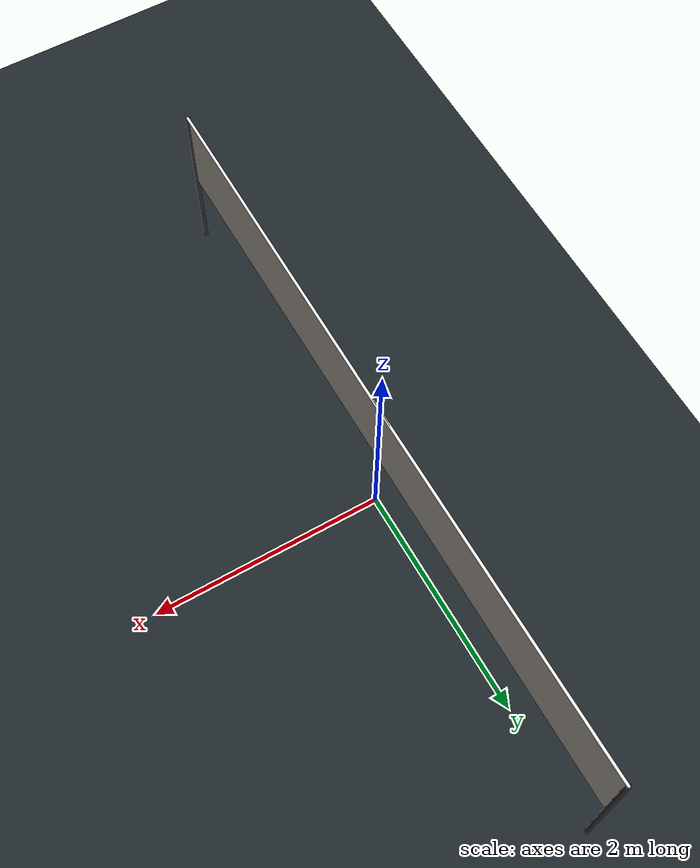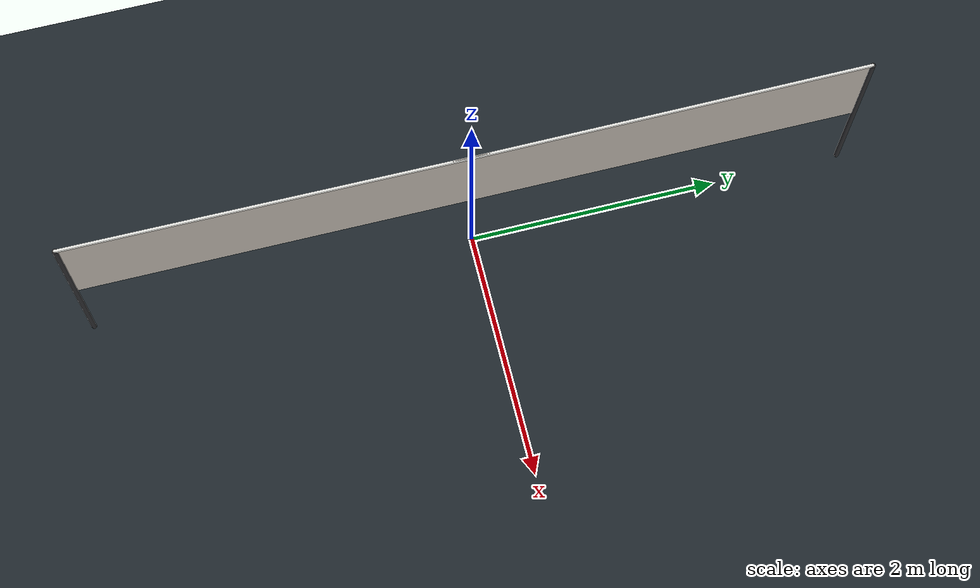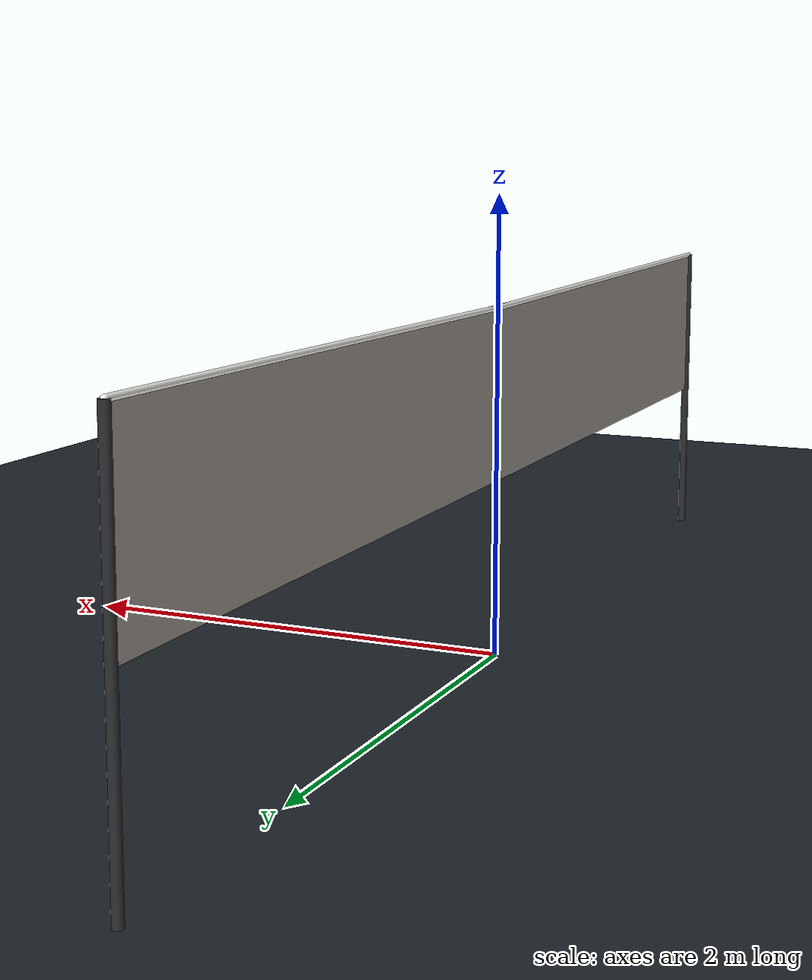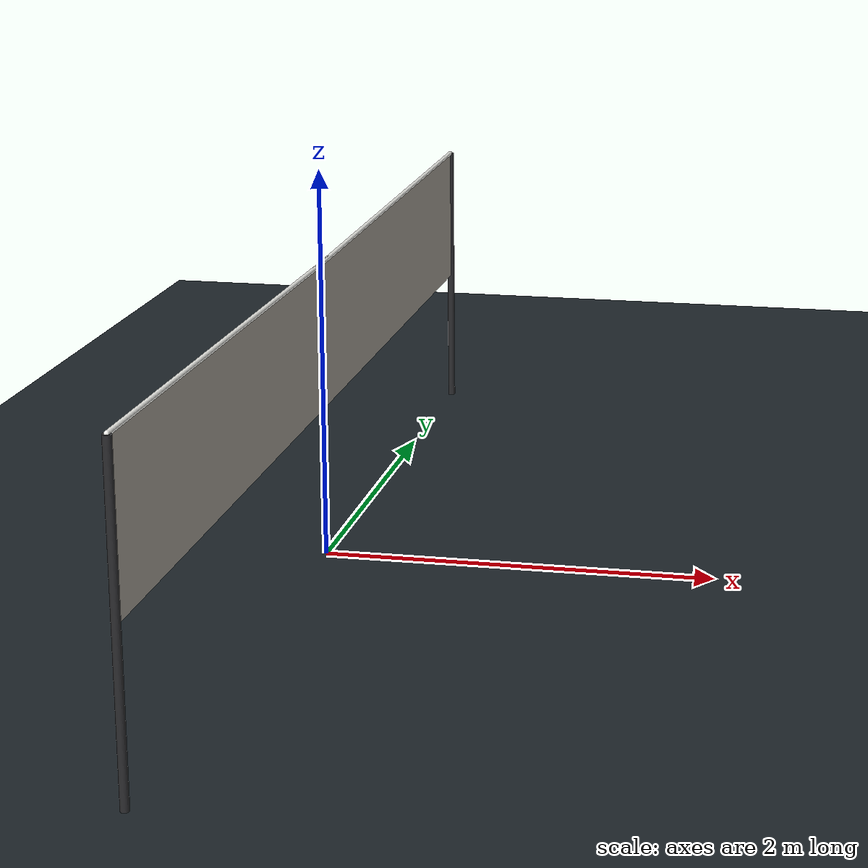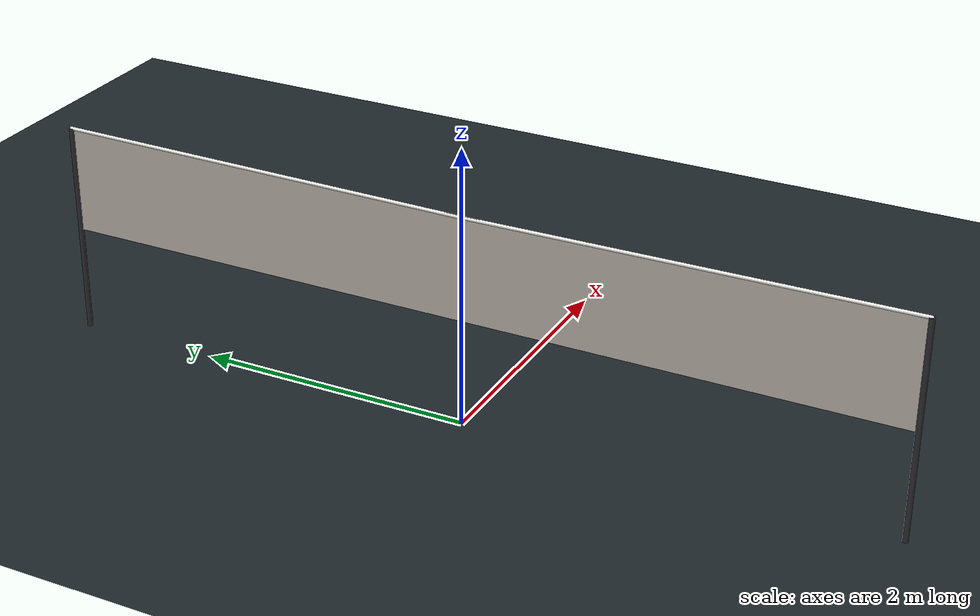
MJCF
<mujoco model="badminton_court_infinite_floor">
  <asset>
    <texture name="skybox" type="skybox" builtin="gradient" rgb1="0.18 0.22 0.28" rgb2="0.65 0.70 0.76" width="512" height="3072"/>
    <texture name="court_tex" type="2d" file="assets/textures/badminton_court.png"/>
    <texture name="net_tex" type="2d" file="assets/textures/badminton_net.png"/>
    <material name="court_mat" texture="court_tex" texuniform="false" texrepeat="1 1" specular="0.03" shininess="0.04"/>
    <material name="infinite_floor_mat" rgba="0.12 0.15 0.17 1" specular="0.02" shininess="0.02"/>
    <material name="post_mat" rgba="0.18 0.18 0.19 1" specular="0.25" shininess="0.35"/>
    <material name="net_mat" texture="net_tex" rgba="1 1 1 0.92" specular="0.02" shininess="0.02"/>
  </asset>
  <default>
    <default class="net_collision">
      <geom contype="1" conaffinity="1" condim="3" friction="0.25 0.003 0.0001" solref="0.015 1" solimp="0.88 0.97 0.0015"/>
    </default>
  </default>
  <worldbody>
    <light name="key_light" pos="0 -4 9" dir="0 0 -1" directional="true" diffuse="0.95 0.95 0.92" castshadow="true"/>
    <light name="fill_light" pos="4 3 6" dir="-0.4 -0.2 -1" directional="true" diffuse="0.45 0.48 0.50"/>
    <camera name="broadcast" pos="0 -10 5.0" xyaxes="1 0 0 0 0.40 0.9165" fovy="52"/>
    <camera name="top" pos="0 0 15" xyaxes="1 0 0 0 1 0" fovy="48"/>
    <camera name="sideline" pos="-1 -7 2.0" xyaxes="1 0 0 0 0.18 0.984" fovy="60"/>

    <!-- PHYSICS FLOOR: MuJoCo plane collision is infinite. size="0 0 0.1" also makes the rendered floor visually extend without a finite court edge. -->
    <geom name="infinite_floor" type="plane" pos="0 0 0" size="0 0 0.1" material="infinite_floor_mat" contype="1" conaffinity="1" condim="3" friction="0.85 0.02 0.0015"/>

    <!-- VISUAL COURT ONLY. The physical contact still comes from infinite_floor. Keeping this plane non-colliding avoids duplicate contacts and thin-box penetration. Top view dimensions: 13.40 m x 6.10 m. -->
    <geom name="badminton_court_visual" type="plane" pos="0 0 0.001" size="6.70 3.05 0.1" material="court_mat" contype="0" conaffinity="0" group="2"/>

    <!-- Posts: placed on the doubles side lines, 1.55 m high. -->
    <geom name="net_post_south" type="cylinder" fromto="0 -3.05 0  0 -3.05 1.55" size="0.020" material="post_mat" contype="1" conaffinity="1" condim="3"/>
    <geom name="net_post_north" type="cylinder" fromto="0 3.05 0  0 3.05 1.55" size="0.020" material="post_mat" contype="1" conaffinity="1" condim="3"/>
    <!-- Net: two thin halves approximate the official 26 mm sag from 1.55 m at each post to 1.524 m at court centre. Net depth = 0.760 m. It is contactable. -->
    <body name="badminton_net">
      <geom name="net_left_half" class="net_collision" type="box" pos="0 -1.525 1.157000" size="0.003 1.525 0.380" euler="-0.00852438 0 0" material="net_mat"/>
      <geom name="net_right_half" class="net_collision" type="box" pos="0 1.525 1.157000" size="0.003 1.525 0.380" euler="0.00852438 0 0" material="net_mat"/>

      <!-- White top cord/tape accent. -->
      <geom name="net_top_left" type="capsule" fromto="0 -3.05 1.55  0 0 1.524" size="0.012" rgba="0.96 0.96 0.94 1" contype="0" conaffinity="0"/>
      <geom name="net_top_right" type="capsule" fromto="0 0 1.524  0 3.05 1.55" size="0.012" rgba="0.96 0.96 0.94 1" contype="0" conaffinity="0"/>
    </body>
  </worldbody>
</mujoco>
